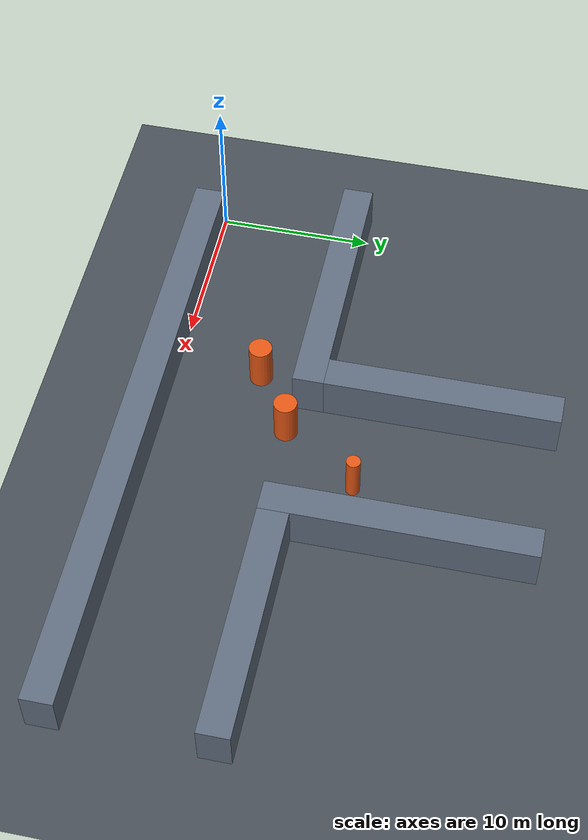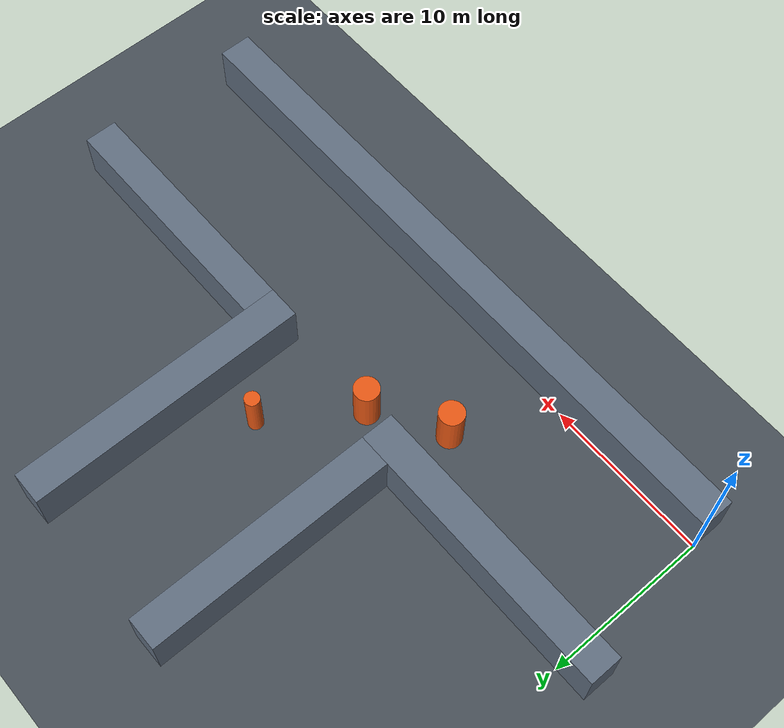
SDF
<sdf version="1.6">
 <world name="comparison_env1">
  <physics name="ode" type="ode">
   <max_step_size>0.001</max_step_size>
   <real_time_update_rate>1000</real_time_update_rate>
  </physics>
  <light name="sun" type="directional">
   <pose>0 0 20 0 0 0</pose>
   <diffuse>0.85 0.85 0.85 1</diffuse>
   <specular>0.2 0.2 0.2 1</specular>
   <direction>-0.5 0.1 -0.9</direction>
  </light>
  <model name="ground_plane">
   <static>true</static>
   <link name="link">
    <collision name="collision">
     <geometry><plane><normal>0 0 1</normal><size>100 100</size></plane></geometry>
    </collision>
    <visual name="visual">
     <geometry><plane><normal>0 0 1</normal><size>100 100</size></plane></geometry>
     <material><ambient>0.16 0.18 0.20 1</ambient><diffuse>0.28 0.31 0.34 1</diffuse></material>
    </visual>
   </link>
  </model>
  <model name="south_wall">
   <static>true</static>
   <pose>20 -1 1.5 0 0 0</pose>
   <link name="link">
    <collision name="collision"><geometry><box><size>40 2 3</size></box></geometry></collision>
    <visual name="visual">
     <geometry><box><size>40 2 3</size></box></geometry>
     <material><ambient>0.22 0.25 0.30 1</ambient><diffuse>0.38 0.43 0.50 1</diffuse></material>
    </visual>
   </link>
  </model>
  <model name="north_left_wall">
   <static>true</static>
   <pose>6.5 9 1.5 0 0 0</pose>
   <link name="link">
    <collision name="collision"><geometry><box><size>17 2 3</size></box></geometry></collision>
    <visual name="visual">
     <geometry><box><size>17 2 3</size></box></geometry>
     <material><ambient>0.22 0.25 0.30 1</ambient><diffuse>0.38 0.43 0.50 1</diffuse></material>
    </visual>
   </link>
  </model>
  <model name="right_vertical_wall">
   <static>true</static>
   <pose>24 16.5 1.5 0 0 0</pose>
   <link name="link">
    <collision name="collision"><geometry><box><size>2 17 3</size></box></geometry></collision>
    <visual name="visual">
     <geometry><box><size>2 17 3</size></box></geometry>
     <material><ambient>0.22 0.25 0.30 1</ambient><diffuse>0.38 0.43 0.50 1</diffuse></material>
    </visual>
   </link>
  </model>
  <model name="left_vertical_wall">
   <static>true</static>
   <pose>14 17.5 1.5 0 0 0</pose>
   <link name="link">
    <collision name="collision"><geometry><box><size>2 15 3</size></box></geometry></collision>
    <visual name="visual">
     <geometry><box><size>2 15 3</size></box></geometry>
     <material><ambient>0.22 0.25 0.30 1</ambient><diffuse>0.38 0.43 0.50 1</diffuse></material>
    </visual>
   </link>
  </model>
  <model name="north_right_wall">
   <static>true</static>
   <pose>32.5 9 1.5 0 0 0</pose>
   <link name="link">
    <collision name="collision"><geometry><box><size>15 2 3</size></box></geometry></collision>
    <visual name="visual">
     <geometry><box><size>15 2 3</size></box></geometry>
     <material><ambient>0.22 0.25 0.30 1</ambient><diffuse>0.38 0.43 0.50 1</diffuse></material>
    </visual>
   </link>
  </model>
  <model name="circle_obstacle_1">
   <static>true</static>
   <pose>20.5 13 1.5 0 0 0</pose>
   <link name="link">
    <collision name="collision">
     <geometry><cylinder><radius>0.45</radius><length>3</length></cylinder></geometry>
    </collision>
    <visual name="visual">
     <geometry><cylinder><radius>0.45</radius><length>3</length></cylinder></geometry>
     <material><ambient>0.45 0.16 0.04 1</ambient><diffuse>0.90 0.34 0.08 1</diffuse></material>
    </visual>
   </link>
  </model>
  <model name="circle_obstacle_2">
   <static>true</static>
   <pose>13 5.5 1.5 0 0 0</pose>
   <link name="link">
    <collision name="collision">
     <geometry><cylinder><radius>0.75</radius><length>3</length></cylinder></geometry>
    </collision>
    <visual name="visual">
     <geometry><cylinder><radius>0.75</radius><length>3</length></cylinder></geometry>
     <material><ambient>0.45 0.16 0.04 1</ambient><diffuse>0.90 0.34 0.08 1</diffuse></material>
    </visual>
   </link>
  </model>
  <model name="circle_obstacle_3">
   <static>true</static>
   <pose>17 8 1.5 0 0 0</pose>
   <link name="link">
    <collision name="collision">
     <geometry><cylinder><radius>0.75</radius><length>3</length></cylinder></geometry>
    </collision>
    <visual name="visual">
     <geometry><cylinder><radius>0.75</radius><length>3</length></cylinder></geometry>
     <material><ambient>0.45 0.16 0.04 1</ambient><diffuse>0.90 0.34 0.08 1</diffuse></material>
    </visual>
   </link>
  </model>
 </world>
</sdf>
